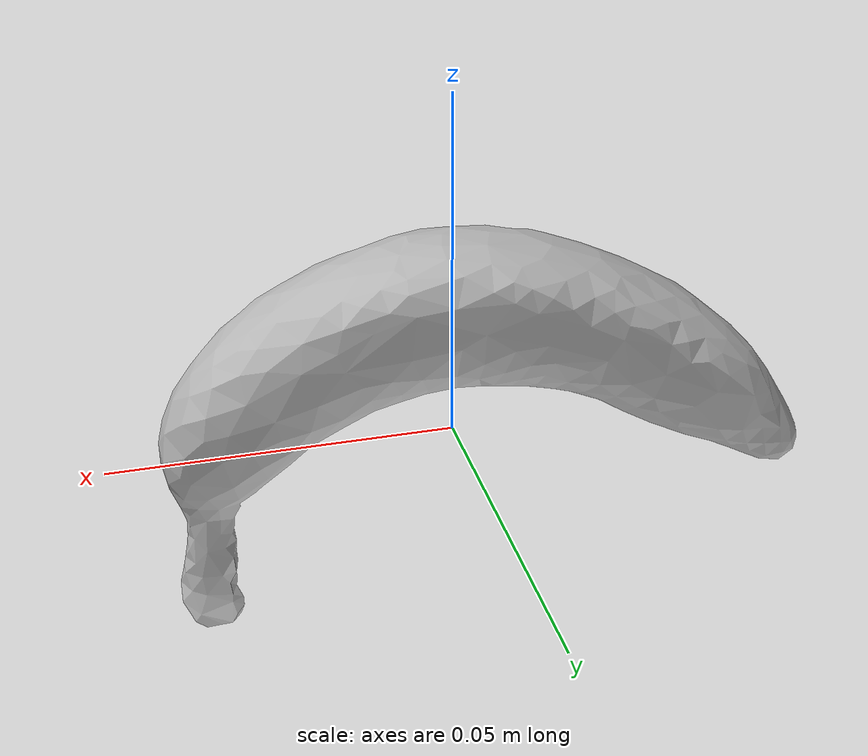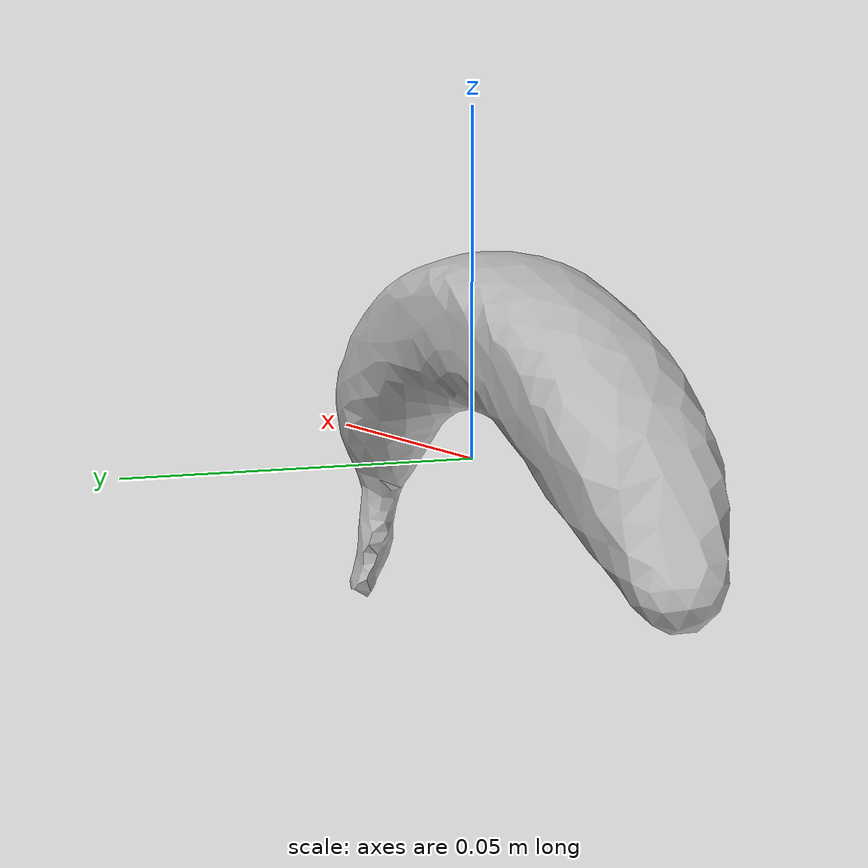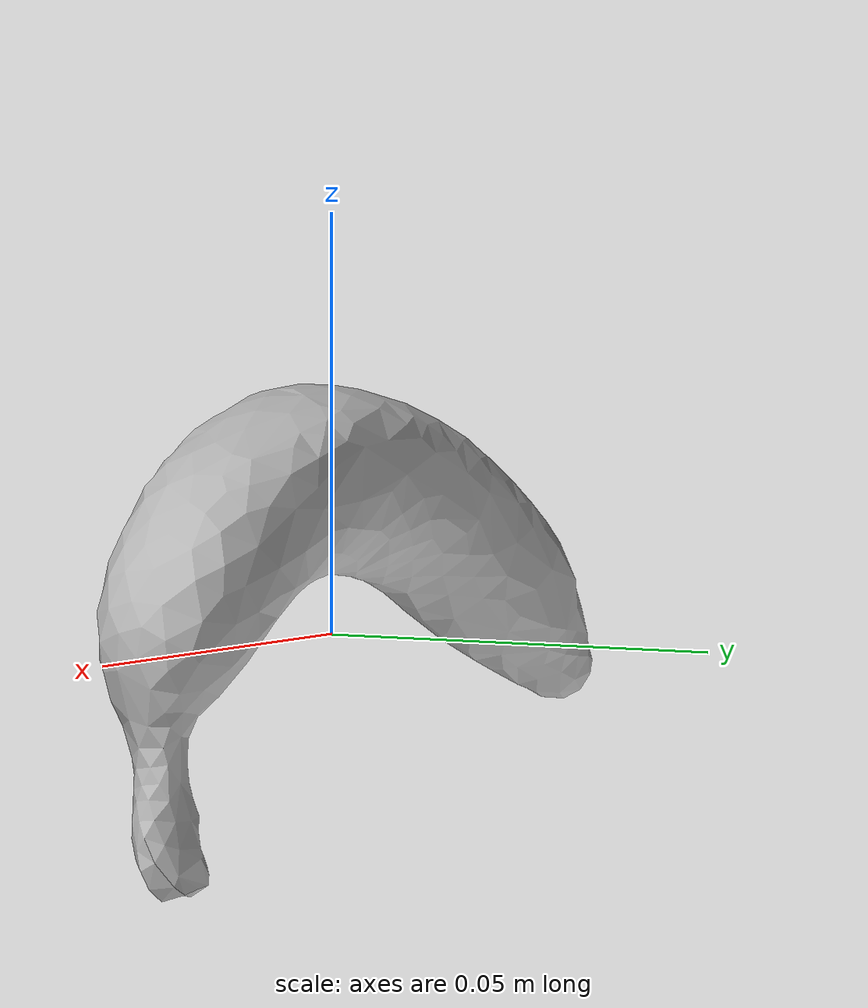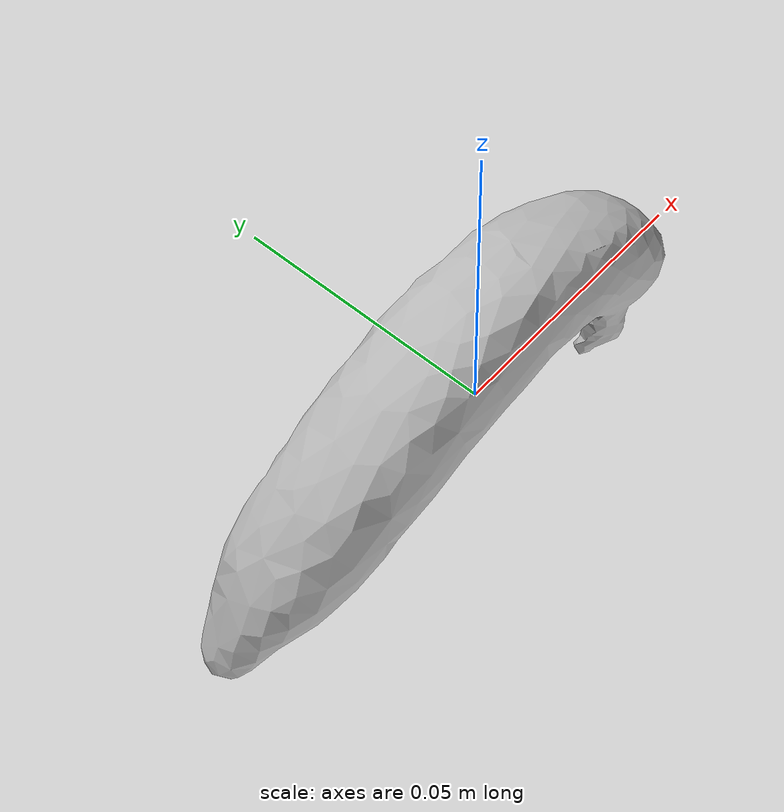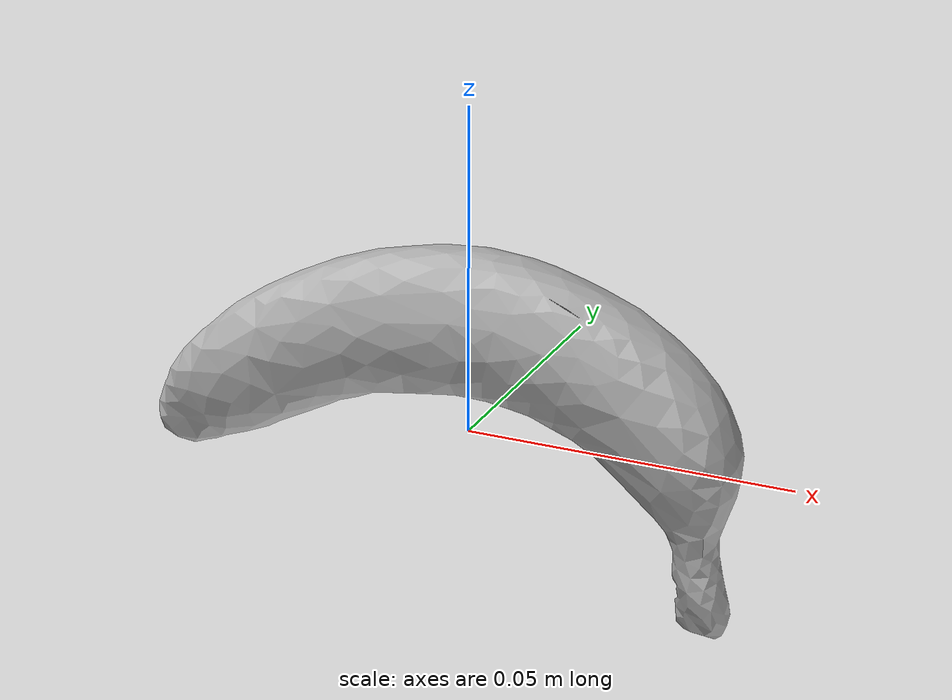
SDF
<?xml version="1.0"?>
<sdf version="1.6">
  <model name="banana">
    <static>false</static>
    <link name="link">
      <inertial>
        <mass>0.15</mass>
        <inertia>
          <ixx>0.001</ixx>
          <iyy>0.001</iyy>
          <izz>0.001</izz>
        </inertia>
      </inertial>
      <visual name="visual">
        <geometry>
          <mesh>
            <uri>model://fruits/banana/banana_v03.obj</uri>
            <scale>0.002 0.002 0.002</scale>
          </mesh>
        </geometry>
      </visual>
      <collision name="collision">
        <geometry>
          <mesh>
            <uri>model://fruits/banana/banana_v03.obj</uri>
            <scale>0.002 0.002 0.002</scale>
          </mesh>
        </geometry>
      </collision>
    </link>
  </model>
</sdf>
